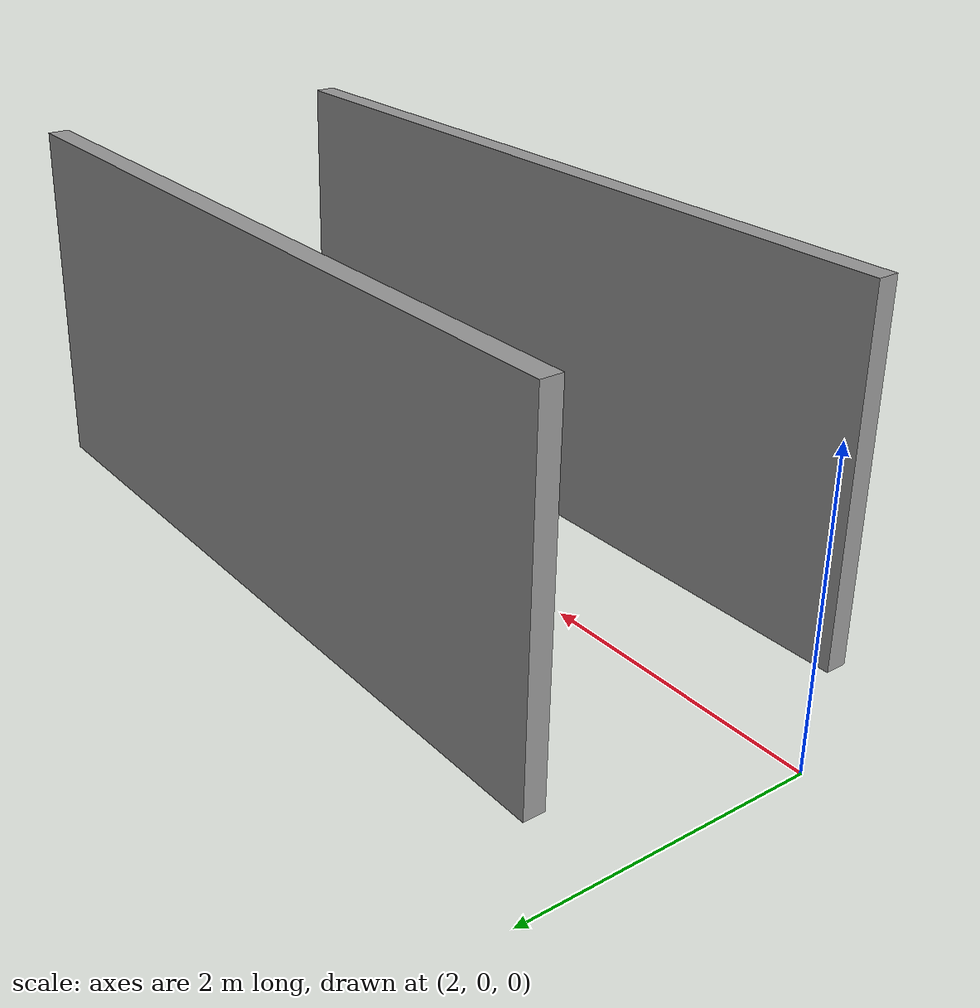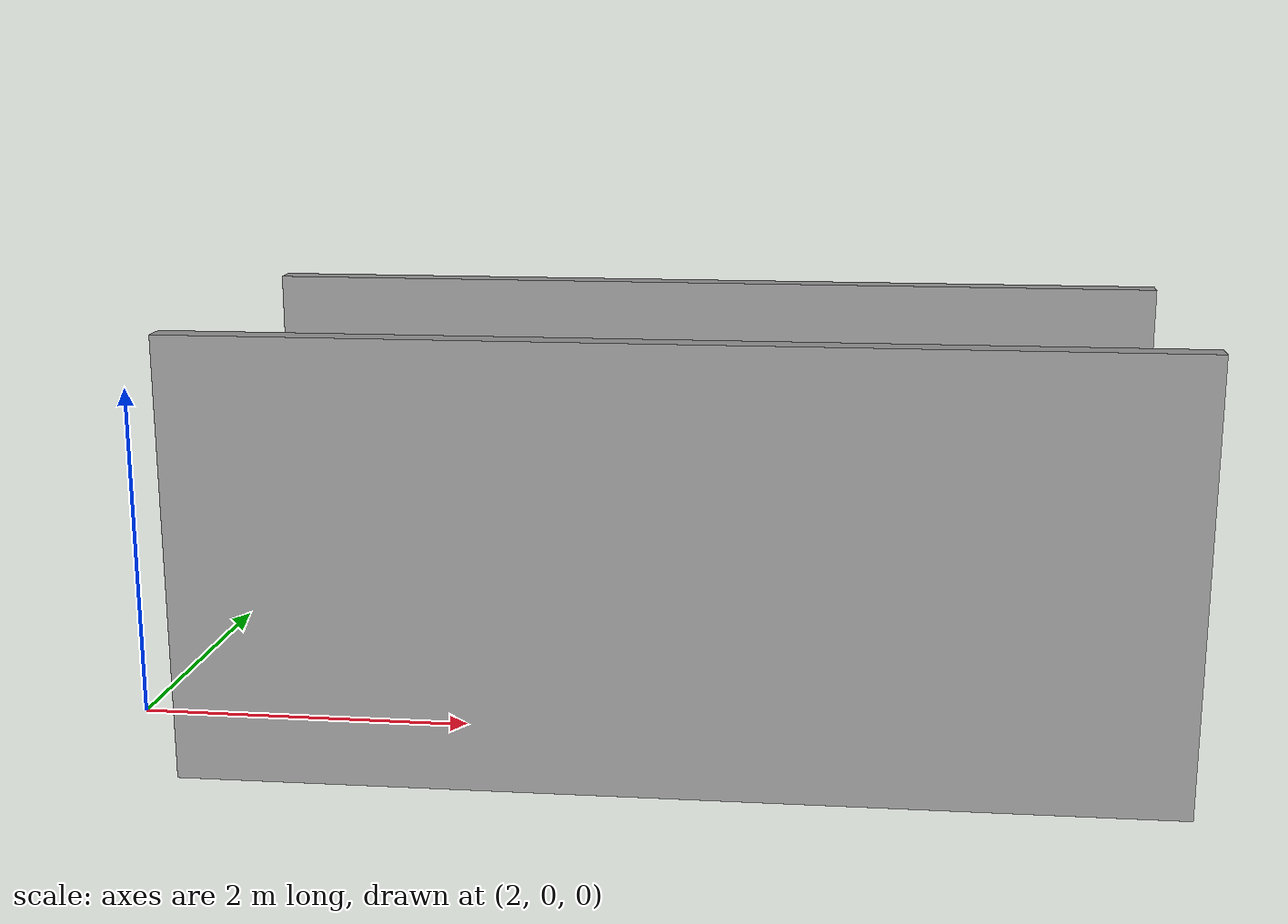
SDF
<?xml version='1.0'?>
<sdf version='1.7'>
  <model name='Korytarz'>
    <pose>4.06049 0.230276 0 0 -0 0</pose>
    <link name='Wall_107'>
      <collision name='Wall_107_Collision'>
        <geometry>
          <box>
            <size>5.5 0.15 2.5</size>
          </box>
        </geometry>
        <pose>0 0 1.25 0 -0 0</pose>
      </collision>
      <visual name='Wall_107_Visual'>
        <pose>0 0 1.25 0 -0 0</pose>
        <geometry>
          <box>
            <size>5.5 0.15 2.5</size>
          </box>
        </geometry>
        <material>
          <script>
            <uri>file://media/materials/scripts/gazebo.material</uri>
            <name>Gazebo/Grey</name>
          </script>
          <ambient>1 1 1 1</ambient>
        </material>
        <meta>
          <layer>0</layer>
        </meta>
      </visual>
      <pose>1.25496 1.17527 0 0 -0 0</pose>
    </link>
    <link name='Wall_111'>
      <collision name='Wall_111_Collision'>
        <geometry>
          <box>
            <size>5.55514 0.15 2.5</size>
          </box>
        </geometry>
        <pose>0 0 1.25 0 -0 0</pose>
      </collision>
      <visual name='Wall_111_Visual'>
        <pose>0 0 1.25 0 -0 0</pose>
        <geometry>
          <box>
            <size>5.55514 0.15 2.5</size>
          </box>
        </geometry>
        <material>
          <script>
            <uri>file://media/materials/scripts/gazebo.material</uri>
            <name>Gazebo/Grey</name>
          </script>
          <ambient>1 1 1 1</ambient>
        </material>
        <meta>
          <layer>0</layer>
        </meta>
      </visual>
      <pose>1.28246 -1.15548 0 0 -0 -3.13447</pose>
    </link>
    <static>1</static>
  </model>
</sdf>
